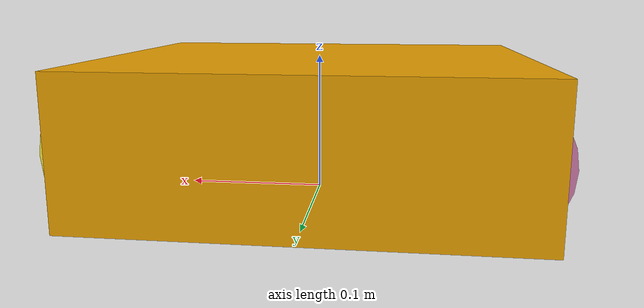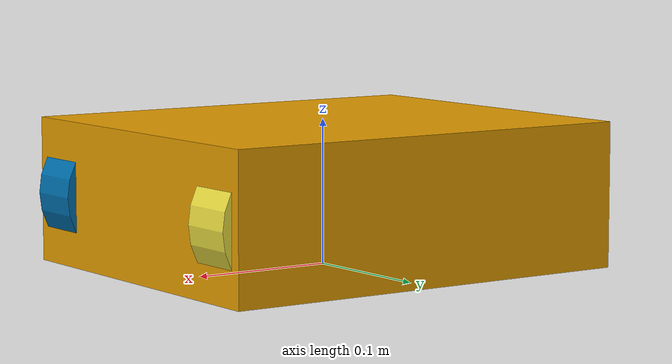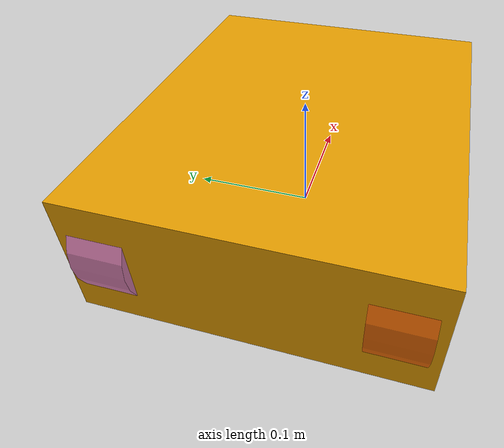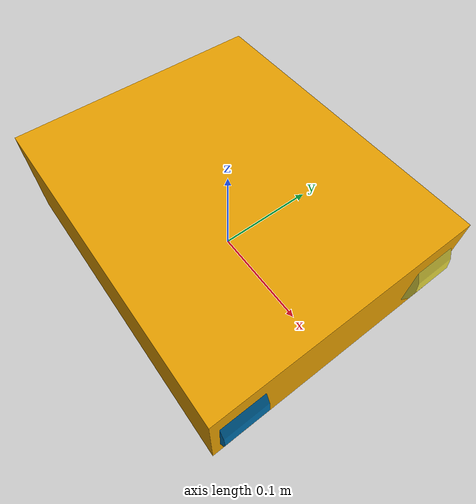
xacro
<?xml version="1.0"?>
<robot xmlns:xacro="http://www.ros.org/wiki/xacro" name="mecanum_arm_robot">

  <!-- Minimal URDF for ros2_control interface declarations.
       This is NOT a full geometric robot description - just enough
       for controller_manager to load the hardware plugin and controllers. -->

  <!-- Base link -->
  <link name="base_link">
    <visual>
      <geometry><box size="0.3 0.25 0.1"/></geometry>
    </visual>
  </link>

  <link name="base_footprint"/>
  <joint name="base_footprint_joint" type="fixed">
    <parent link="base_footprint"/>
    <child link="base_link"/>
    <origin xyz="0 0 0.05" rpy="0 0 0"/>
  </joint>

  <!-- IMU link -->
  <link name="imu_link"/>
  <joint name="imu_joint" type="fixed">
    <parent link="base_link"/>
    <child link="imu_link"/>
    <origin xyz="0 0 0" rpy="0 0 0"/>
  </joint>

  <!-- ========== Wheel links and joints ========== -->
  <xacro:macro name="wheel" params="name x y">
    <link name="${name}_link">
      <visual>
        <geometry><cylinder radius="0.0485" length="0.04"/></geometry>
        <origin xyz="0 0 0" rpy="1.5708 0 0"/>
      </visual>
    </link>
    <joint name="${name}_joint" type="continuous">
      <parent link="base_link"/>
      <child link="${name}_link"/>
      <origin xyz="${x} ${y} -0.0015" rpy="0 0 0"/>
      <axis xyz="0 1 0"/>
    </joint>
  </xacro:macro>

  <xacro:wheel name="front_left_wheel"  x="0.108"  y="0.0975"/>
  <xacro:wheel name="front_right_wheel" x="0.108"  y="-0.0975"/>
  <xacro:wheel name="rear_right_wheel"  x="-0.108" y="-0.0975"/>
  <xacro:wheel name="rear_left_wheel"   x="-0.108" y="0.0975"/>

  <!-- ========== Arm links and joints ========== -->
  <xacro:macro name="arm_joint" params="name parent child">
    <link name="${child}"/>
    <joint name="${name}" type="revolute">
      <parent link="${parent}"/>
      <child link="${child}"/>
      <origin xyz="0 0 0.05" rpy="0 0 0"/>
      <axis xyz="0 0 1"/>
      <limit lower="0" upper="4.18879" effort="10" velocity="5.0"/>
    </joint>
  </xacro:macro>

  <xacro:arm_joint name="arm_joint_1" parent="base_link"   child="arm_link_1"/>
  <xacro:arm_joint name="arm_joint_2" parent="arm_link_1"  child="arm_link_2"/>
  <xacro:arm_joint name="arm_joint_3" parent="arm_link_2"  child="arm_link_3"/>
  <xacro:arm_joint name="arm_joint_4" parent="arm_link_3"  child="arm_link_4"/>
  <xacro:arm_joint name="arm_joint_5" parent="arm_link_4"  child="arm_link_5"/>
  <xacro:arm_joint name="arm_joint_6" parent="arm_link_5"  child="arm_link_6"/>

  <!-- ========== ros2_control hardware interface ========== -->
  <ros2_control name="RobotBoardSystem" type="system">
    <hardware>
      <plugin>robot_board_hardware/RobotBoardSystemInterface</plugin>
      <param name="serial_port">/dev/ttyACM0</param>
      <param name="baud_rate">1000000</param>
    </hardware>

    <!-- 4 Mecanum wheel motors: velocity command/state -->
    <!-- Physical wiring: motor1=FL(左前), motor2=RL(左后), motor3=FR(右前), motor4=RR(右后) -->
    <!-- Right-side motors (3,4) are mounted reversed; negate is applied in robot_board_hardware -->
    <joint name="front_left_wheel_joint">
      <command_interface name="velocity"/>
      <state_interface name="velocity"/>
      <param name="motor_id">1</param>
    </joint>
    <joint name="rear_left_wheel_joint">
      <command_interface name="velocity"/>
      <state_interface name="velocity"/>
      <param name="motor_id">2</param>
    </joint>
    <joint name="front_right_wheel_joint">
      <command_interface name="velocity"/>
      <state_interface name="velocity"/>
      <param name="motor_id">3</param>
    </joint>
    <joint name="rear_right_wheel_joint">
      <command_interface name="velocity"/>
      <state_interface name="velocity"/>
      <param name="motor_id">4</param>
    </joint>

    <!-- 6 Bus servos for robot arm: position command/state (radians) -->
    <!-- Parameters: servo_id, zero (pulse at 0 rad), init (initial angle in rad), min/max in pulse width, servo_duration in ms -->
    <!-- When min > max, the joint is flipped (reversed direction) -->
    <!-- servo_duration: movement duration in ms (0=fastest, larger=slower) -->
    <joint name="arm_joint_1">
      <command_interface name="position"/>
      <state_interface name="position"/>
      <param name="servo_id">1</param>
      <param name="zero">498</param>
      <param name="init">0.0</param>
      <param name="min">1000</param>
      <param name="max">0</param>
      <param name="servo_duration">2000</param>
    </joint>
    <joint name="arm_joint_2">
      <command_interface name="position"/>
      <state_interface name="position"/>
      <param name="servo_id">2</param>
      <param name="zero">495</param>
      <param name="init">-0.9</param>
      <param name="min">1000</param>
      <param name="max">0</param>
      <param name="servo_duration">2000</param>
    </joint>
    <joint name="arm_joint_3">
      <command_interface name="position"/>
      <state_interface name="position"/>
      <param name="servo_id">3</param>
      <param name="zero">470</param>
      <param name="init">1.57</param>
      <param name="min">1000</param>
      <param name="max">0</param>
      <param name="servo_duration">2000</param>
    </joint>
    <joint name="arm_joint_4">
      <command_interface name="position"/>
      <state_interface name="position"/>
      <param name="servo_id">4</param>
      <param name="zero">511</param>
      <param name="init">1.57</param>
      <param name="min">1000</param>
      <param name="max">0</param>
      <param name="servo_duration">2000</param>
    </joint>
    <joint name="arm_joint_5">
      <command_interface name="position"/>
      <state_interface name="position"/>
      <param name="servo_id">5</param>
      <param name="zero">504</param>
      <param name="init">0.0</param>
      <param name="min">1000</param>
      <param name="max">0</param>
      <param name="servo_duration">2000</param>
    </joint>
    <joint name="arm_joint_6">
      <command_interface name="position"/>
      <state_interface name="position"/>
      <param name="servo_id">10</param>
      <param name="zero">591</param>
      <param name="init">0.0</param>
      <param name="min">1000</param>
      <param name="max">0</param>
      <param name="servo_duration">2000</param>
    </joint>

    <!-- IMU sensor -->
    <sensor name="imu_sensor">
      <state_interface name="orientation.x"/>
      <state_interface name="orientation.y"/>
      <state_interface name="orientation.z"/>
      <state_interface name="orientation.w"/>
      <state_interface name="angular_velocity.x"/>
      <state_interface name="angular_velocity.y"/>
      <state_interface name="angular_velocity.z"/>
      <state_interface name="linear_acceleration.x"/>
      <state_interface name="linear_acceleration.y"/>
      <state_interface name="linear_acceleration.z"/>
    </sensor>

    <!-- Battery voltage sensor -->
    <sensor name="battery_sensor">
      <state_interface name="voltage"/>
    </sensor>

    <!-- Button sensor -->
    <sensor name="button_sensor">
      <state_interface name="button1_state"/>
      <state_interface name="button2_state"/>
    </sensor>

    <!-- LED GPIO -->
    <gpio name="led">
      <command_interface name="on_time"/>
      <command_interface name="off_time"/>
      <command_interface name="repeat"/>
      <command_interface name="led_id"/>
    </gpio>

    <!-- Buzzer GPIO -->
    <gpio name="buzzer">
      <command_interface name="frequency"/>
      <command_interface name="on_time"/>
      <command_interface name="off_time"/>
      <command_interface name="repeat"/>
    </gpio>
  </ros2_control>

</robot>
